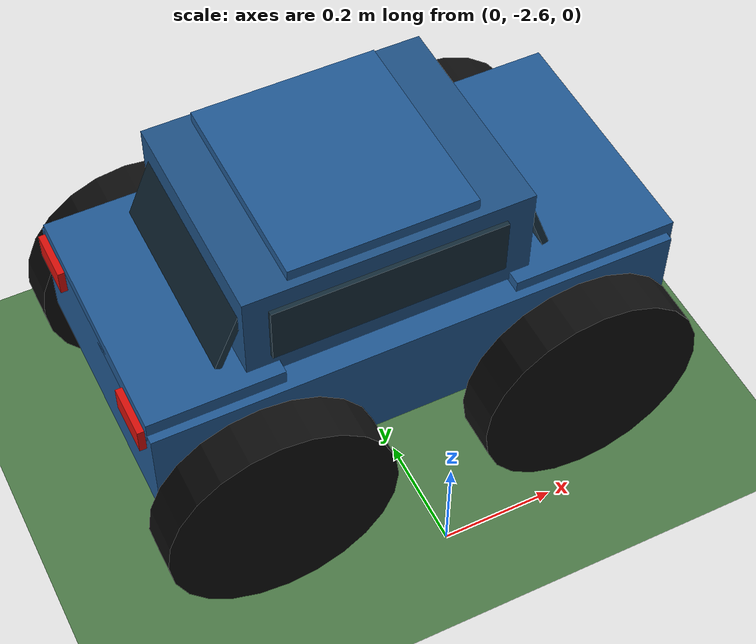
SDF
<sdf version="1.8">
 <world name="vehicle_world">
  <model name="ground">
   <static>true</static>
   <link name="ground">
    <collision name="ground">
     <geometry><plane><normal>0 0 1</normal><size>8200 8200</size></plane></geometry>
    </collision>
    <visual name="terrain">
     <pose>0 0 0.006 0 0 0</pose>
     <geometry><plane><normal>0 0 1</normal><size>8200 8200</size></plane></geometry>
     <material><ambient>0.25 0.42 0.24 1</ambient><diffuse>0.30 0.48 0.28 1</diffuse></material>
    </visual>
   </link>
  </model>
  <model name="vehicle">
   <pose>0 -2.25 0.21 0 0 0</pose>
   <link name="base_link">
    <inertial><mass>5</mass><inertia><ixx>0.1</ixx><iyy>0.3</iyy><izz>0.3</izz></inertia></inertial>
    <collision name="body">
     <pose>0 0 0.12 0 0 0</pose>
     <geometry><box><size>0.8 0.45 0.2</size></box></geometry>
    </collision>
    <visual name="body_visual">
     <pose>0 0 0.12 0 0 0</pose>
     <geometry><box><size>0.91 0.47 0.19</size></box></geometry>
     <material>
      <ambient>0.11 0.25 0.42 1</ambient>
      <diffuse>0.13 0.35 0.58 1</diffuse>
      <specular>0.45 0.45 0.45 1</specular>
     </material>
    </visual>
    <visual name="hood">
     <pose>0.32 0 0.218 0 0 0</pose>
     <geometry><box><size>0.29 0.44 0.035</size></box></geometry>
     <material><diffuse>0.13 0.35 0.58 1</diffuse></material>
    </visual>
    <visual name="trunk">
     <pose>-0.34 0 0.22 0 0 0</pose>
     <geometry><box><size>0.23 0.44 0.04</size></box></geometry>
     <material><diffuse>0.13 0.35 0.58 1</diffuse></material>
    </visual>
    <visual name="cabin">
     <pose>-0.035 0 0.31 0 0 0</pose>
     <geometry><box><size>0.49 0.39 0.18</size></box></geometry>
     <material><diffuse>0.12 0.32 0.52 1</diffuse></material>
    </visual>
    <visual name="roof">
     <pose>-0.04 0 0.407 0 0 0</pose>
     <geometry><box><size>0.32 0.36 0.025</size></box></geometry>
     <material><diffuse>0.13 0.35 0.58 1</diffuse></material>
    </visual>
    <visual name="windshield">
     <pose>0.226 0 0.315 0 -0.35 0</pose>
     <geometry><box><size>0.012 0.35 0.145</size></box></geometry>
     <material><diffuse>0.1 0.2 0.26 1</diffuse><specular>0.35 0.35 0.35 1</specular></material>
    </visual>
    <visual name="rear_window">
     <pose>-0.29 0 0.312 0 0.4 0</pose>
     <geometry><box><size>0.012 0.35 0.14</size></box></geometry>
     <material><diffuse>0.1 0.2 0.26 1</diffuse></material>
    </visual>
    <visual name="left_windows">
     <pose>-0.04 0.202 0.318 0 0 0</pose>
     <geometry><box><size>0.4 0.008 0.105</size></box></geometry>
     <material><diffuse>0.08 0.17 0.22 1</diffuse></material>
    </visual>
    <visual name="right_windows">
     <pose>-0.04 -0.202 0.318 0 0 0</pose>
     <geometry><box><size>0.4 0.008 0.105</size></box></geometry>
     <material><diffuse>0.08 0.17 0.22 1</diffuse></material>
    </visual>
    <visual name="front_grille">
     <pose>0.46 0 0.115 0 0 0</pose>
     <geometry><box><size>0.012 0.28 0.08</size></box></geometry>
     <material><diffuse>0.055 0.06 0.065 1</diffuse></material>
    </visual>
    <visual name="left_headlight">
     <pose>0.463 0.17 0.19 0 0 0</pose>
     <geometry><box><size>0.013 0.09 0.045</size></box></geometry>
     <material><diffuse>0.95 0.94 0.8 1</diffuse></material>
    </visual>
    <visual name="right_headlight">
     <pose>0.463 -0.17 0.19 0 0 0</pose>
     <geometry><box><size>0.013 0.09 0.045</size></box></geometry>
     <material><diffuse>0.95 0.94 0.8 1</diffuse></material>
    </visual>
    <visual name="left_tail_light">
     <pose>-0.462 0.17 0.2 0 0 0</pose>
     <geometry><box><size>0.012 0.09 0.045</size></box></geometry>
     <material><diffuse>0.85 0.06 0.04 1</diffuse></material>
    </visual>
    <visual name="right_tail_light">
     <pose>-0.462 -0.17 0.2 0 0 0</pose>
     <geometry><box><size>0.012 0.09 0.045</size></box></geometry>
     <material><diffuse>0.85 0.06 0.04 1</diffuse></material>
    </visual>
   </link>
   <link name="front_left_wheel">
    <pose>0.28 0.28 0 1.57079632679 0 0</pose>
    <inertial><mass>0.5</mass><inertia><ixx>0.005267</ixx><iyy>0.005267</iyy><izz>0.01</izz></inertia></inertial>
    <collision name="wheel_collision">
     <geometry><cylinder><radius>0.2</radius><length>0.02</length></cylinder></geometry>
     <surface><friction><ode><mu>0.01</mu><mu2>1.0</mu2><fdir1>0 0 1</fdir1></ode></friction></surface>
    </collision>
    <visual name="wheel_visual">
     <geometry><cylinder><radius>0.2</radius><length>0.08</length></cylinder></geometry>
     <material><ambient>0.05 0.05 0.05 1</ambient><diffuse>0.05 0.05 0.05 1</diffuse></material>
    </visual>
   </link>
   <joint name="front_left_wheel_joint" type="revolute">
    <parent>base_link</parent>
    <child>front_left_wheel</child>
    <axis><xyz expressed_in="__model__">0 1 0</xyz></axis>
   </joint>
   <link name="rear_left_wheel">
    <pose>-0.28 0.28 0 1.57079632679 0 0</pose>
    <inertial><mass>0.5</mass><inertia><ixx>0.005267</ixx><iyy>0.005267</iyy><izz>0.01</izz></inertia></inertial>
    <collision name="wheel_collision">
     <geometry><cylinder><radius>0.2</radius><length>0.02</length></cylinder></geometry>
     <surface><friction><ode><mu>0.01</mu><mu2>1.0</mu2><fdir1>0 0 1</fdir1></ode></friction></surface>
    </collision>
    <visual name="wheel_visual">
     <geometry><cylinder><radius>0.2</radius><length>0.08</length></cylinder></geometry>
     <material><ambient>0.05 0.05 0.05 1</ambient><diffuse>0.05 0.05 0.05 1</diffuse></material>
    </visual>
   </link>
   <joint name="rear_left_wheel_joint" type="revolute">
    <parent>base_link</parent>
    <child>rear_left_wheel</child>
    <axis><xyz expressed_in="__model__">0 1 0</xyz></axis>
   </joint>
   <link name="front_right_wheel">
    <pose>0.28 -0.28 0 1.57079632679 0 0</pose>
    <inertial><mass>0.5</mass><inertia><ixx>0.005267</ixx><iyy>0.005267</iyy><izz>0.01</izz></inertia></inertial>
    <collision name="wheel_collision">
     <geometry><cylinder><radius>0.2</radius><length>0.02</length></cylinder></geometry>
     <surface><friction><ode><mu>0.01</mu><mu2>1.0</mu2><fdir1>0 0 1</fdir1></ode></friction></surface>
    </collision>
    <visual name="wheel_visual">
     <geometry><cylinder><radius>0.2</radius><length>0.08</length></cylinder></geometry>
     <material><ambient>0.05 0.05 0.05 1</ambient><diffuse>0.05 0.05 0.05 1</diffuse></material>
    </visual>
   </link>
   <joint name="front_right_wheel_joint" type="revolute">
    <parent>base_link</parent>
    <child>front_right_wheel</child>
    <axis><xyz expressed_in="__model__">0 1 0</xyz></axis>
   </joint>
   <link name="rear_right_wheel">
    <pose>-0.28 -0.28 0 1.57079632679 0 0</pose>
    <inertial><mass>0.5</mass><inertia><ixx>0.005267</ixx><iyy>0.005267</iyy><izz>0.01</izz></inertia></inertial>
    <collision name="wheel_collision">
     <geometry><cylinder><radius>0.2</radius><length>0.02</length></cylinder></geometry>
     <surface><friction><ode><mu>0.01</mu><mu2>1.0</mu2><fdir1>0 0 1</fdir1></ode></friction></surface>
    </collision>
    <visual name="wheel_visual">
     <geometry><cylinder><radius>0.2</radius><length>0.08</length></cylinder></geometry>
     <material><ambient>0.05 0.05 0.05 1</ambient><diffuse>0.05 0.05 0.05 1</diffuse></material>
    </visual>
   </link>
   <joint name="rear_right_wheel_joint" type="revolute">
    <parent>base_link</parent>
    <child>rear_right_wheel</child>
    <axis><xyz expressed_in="__model__">0 1 0</xyz></axis>
   </joint>
   <plugin filename="ignition-gazebo-diff-drive-system" name="ignition::gazebo::systems::DiffDrive">
    <left_joint>front_left_wheel_joint</left_joint>
    <left_joint>rear_left_wheel_joint</left_joint>
    <right_joint>front_right_wheel_joint</right_joint>
    <right_joint>rear_right_wheel_joint</right_joint>
    <wheel_separation>0.56</wheel_separation>
    <wheel_radius>0.2</wheel_radius>
    <topic>/model/vehicle/cmd_vel</topic>
    <odom_topic>/model/vehicle/odometry</odom_topic>
    <odom_publish_frequency>20</odom_publish_frequency>
    <frame_id>odom</frame_id>
    <child_frame_id>base_link</child_frame_id>
   </plugin>
   <plugin filename="ignition-gazebo-odometry-publisher-system" name="ignition::gazebo::systems::OdometryPublisher">
    <odom_topic>/model/vehicle/ground_truth</odom_topic>
    <odom_frame>world</odom_frame>
    <robot_base_frame>base_link</robot_base_frame>
    <odom_publish_frequency>20</odom_publish_frequency>
    <dimensions>2</dimensions>
   </plugin>
  </model>
 </world>
</sdf>
